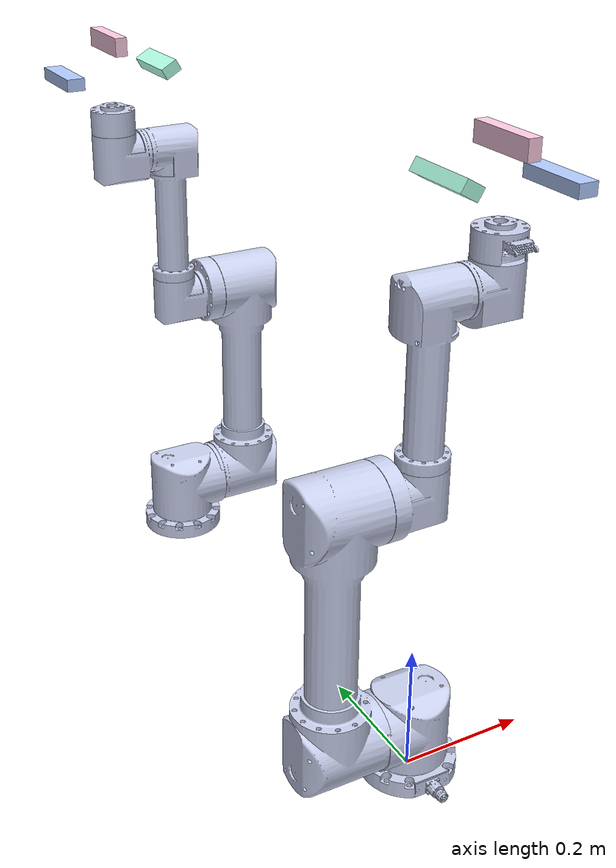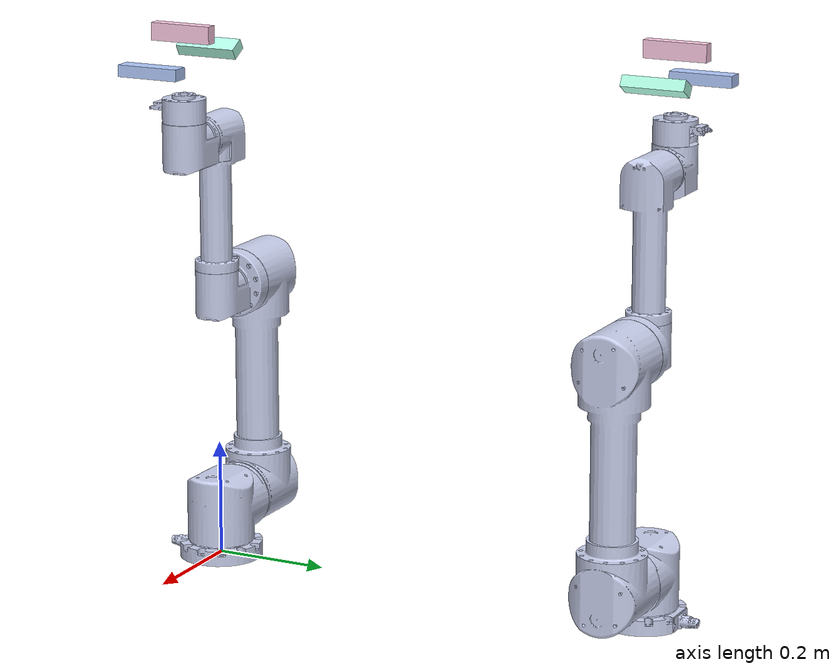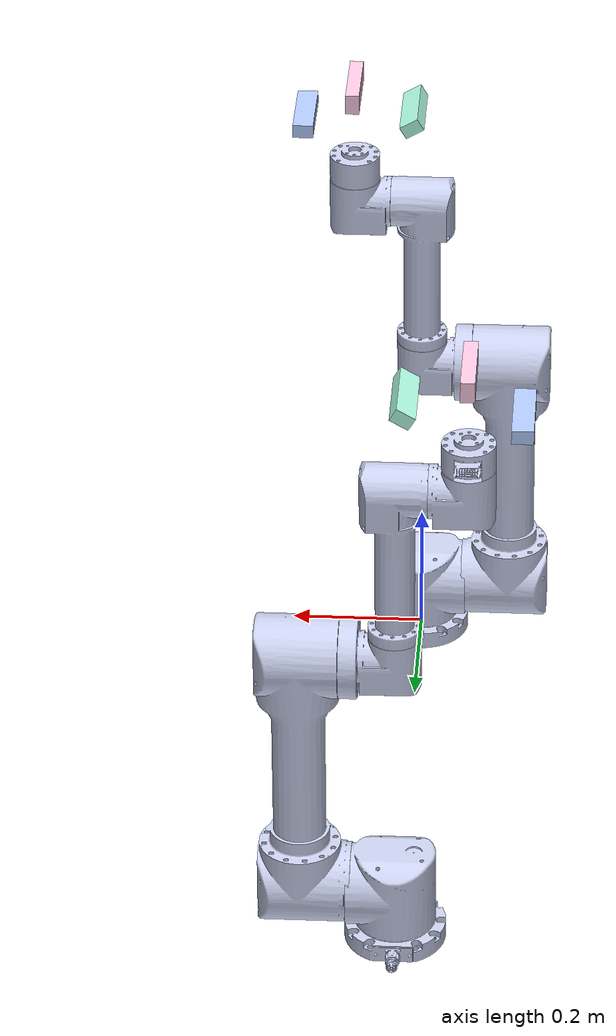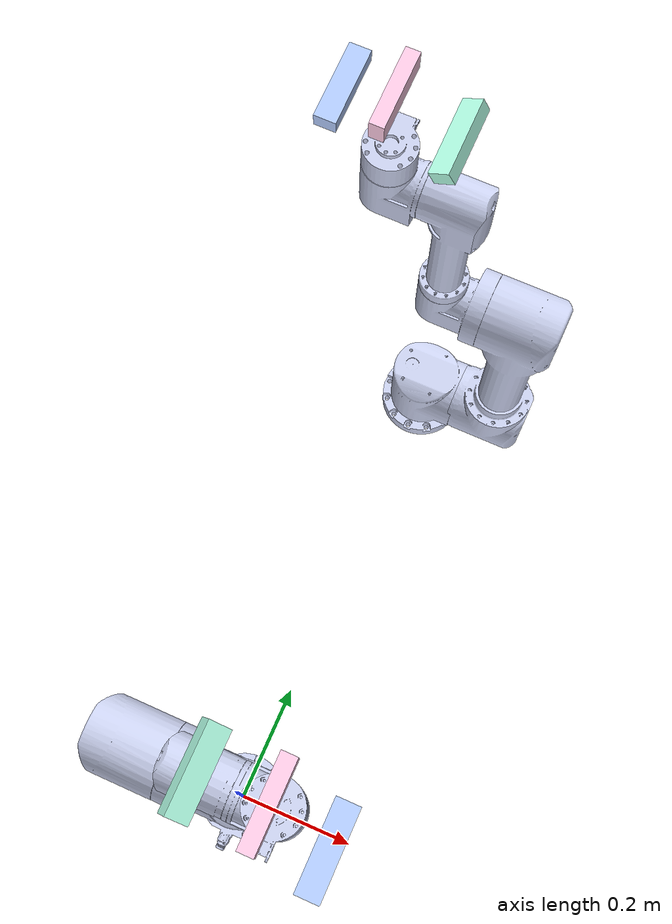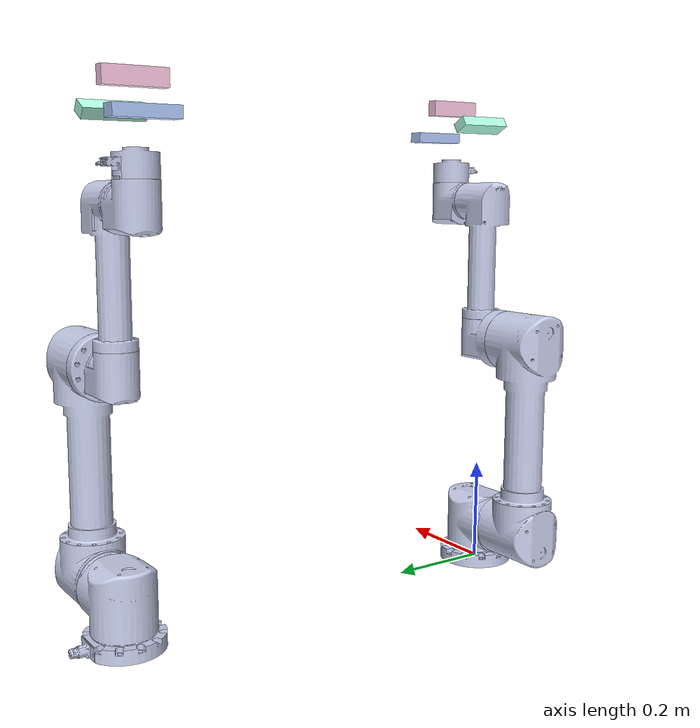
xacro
<?xml version="1.0"?>
<robot xmlns:xacro="http://ros.org/wiki/xacro" name="fsrobo_r">
  <!-- fsrobo_r -->
  <xacro:include filename="$(find fsrobo_r_description)/urdf/fsrobo_r.urdf.xacro" />

  <!-- arm -->
  <xacro:fsrobo_r_robot prefix="arm1/"/>
  <xacro:fsrobo_r_robot prefix="arm2/"/>

  <link name="world" />

  <joint name="arm1_world_joint" type="fixed">
    <parent link="world" />
    <child link = "arm1/base_link" />
    <origin xyz="0.0 0.0 0.0" rpy="0.0 0.0 0.0" />
  </joint>

  <joint name="arm2_world_joint" type="fixed">
    <parent link="world" />
    <child link = "arm2/base_link" />
    <origin xyz="-0.004 0.801 0.0" rpy="0.0 0.0 -3.14" />
  </joint>

  <link name="arm1/Tool1">
    <visual>
      <origin
        xyz="0 0 0"
        rpy="0 0 0" />
      <geometry>
        <box size="0.11 0.02 0.03" />
      </geometry>
      <material
        name="">
        <color
          rgba="1 0.8 0.9 1" />
      </material>
    </visual>
  </link>
  <link name="arm1/Tool2">
    <visual>
      <origin
        xyz="0 0 0"
        rpy="0 0 0" />
      <geometry>
        <box size="0.11 0.02 0.03" />
      </geometry>
      <material
        name="">
        <color
          rgba="0.7 1 0.9 1" />
      </material>
    </visual>
  </link>
  <link name="arm1/Camera">
    <visual>
      <origin
        xyz="0 0 0"
        rpy="0 0 0" />
      <geometry>
        <box size="0.11 0.02 0.03" />
      </geometry>
      <material
        name="">
        <color
          rgba="0.7 0.8 1 1" />
      </material>
    </visual>
  </link>
  <joint
    name="arm1/ToolJoint1"
    type="fixed">
    <origin
      xyz="0 0 0.1035"
      rpy="0 0 0" />
    <parent
      link="arm1/Link6" />
    <child
      link="arm1/Tool1" />
  </joint>
  <joint
    name="arm1/ToolJoint2"
    type="fixed">
    <origin
      xyz="0 -0.08699 0.06631"
      rpy="1.047198 0 0" />
    <parent
      link="arm1/Link6" />
    <child
      link="arm1/Tool2" />
  </joint>
  <joint
    name="arm1/CameraJoint"
    type="fixed">
    <origin
      xyz="0.01745 0.074  0.0482"
      rpy="-1.570796 0 0" />
    <parent
      link="arm1/Link6" />
    <child
      link="arm1/Camera" />
  </joint>

  <link name="arm2/Tool1">
    <visual>
      <origin
        xyz="0 0 0"
        rpy="0 0 0" />
      <geometry>
        <box size="0.11 0.02 0.03" />
      </geometry>
      <material
        name="">
        <color
          rgba="1 0.8 0.9 1" />
      </material>
    </visual>
  </link>
  <link name="arm2/Tool2">
    <visual>
      <origin
        xyz="0 0 0"
        rpy="0 0 0" />
      <geometry>
        <box size="0.11 0.02 0.03" />
      </geometry>
      <material
        name="">
        <color
          rgba="0.7 1 0.9 1" />
      </material>
    </visual>
  </link>
  <link name="arm2/Camera">
    <visual>
      <origin
        xyz="0 0 0"
        rpy="0 0 0" />
      <geometry>
        <box size="0.11 0.02 0.03" />
      </geometry>
      <material
        name="">
        <color
          rgba="0.7 0.8 1 1" />
      </material>
    </visual>
  </link>
  <joint
    name="arm2/ToolJoint1"
    type="fixed">
    <origin
      xyz="0 0 0.1045"
      rpy="0 0 0" />
    <parent
      link="arm2/Link6" />
    <child
      link="arm2/Tool1" />
  </joint>
  <joint
    name="arm2/ToolJoint2"
    type="fixed">
    <origin
      xyz="0 -0.08647 0.0601"
      rpy="1.047198 0 0" />
    <parent
      link="arm2/Link6" />
    <child
      link="arm2/Tool2" />
  </joint>
  <joint
    name="arm2/CameraJoint"
    type="fixed">
    <origin
      xyz="0.01769 0.07403 0.0482"
      rpy="-1.570796 0 0" />
    <parent
      link="arm2/Link6" />
    <child
      link="arm2/Camera" />
  </joint>
</robot>

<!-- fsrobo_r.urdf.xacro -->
<robot xmlns:xacro="http://ros.org/wiki/xacro">

  <xacro:macro name="fsrobo_r_robot" params="prefix">
    <link
      name="${prefix}base_link">
      <inertial>
        <origin
          xyz="6.20129635789006E-06 0.00135671010372665 0.00692741827175326"
          rpy="0 0 0" />
        <mass
          value="0.224918104064038" />
        <inertia
          ixx="0.000389773121010351"
          ixy="5.34979023842647E-08"
          ixz="2.00299715681034E-09"
          iyy="0.000393784206533644"
          iyz="1.8618345474573E-06"
          izz="0.000763322543979528" />
      </inertial>
      <visual>
        <origin
          xyz="0 0 0"
          rpy="0 0 0" />
        <geometry>
          <mesh
            filename="package://fsrobo_r_description/meshes/base_link.STL" />
        </geometry>
        <material
          name="">
          <color
            rgba="0.792156862745098 0.819607843137255 0.933333333333333 1" />
        </material>
      </visual>
      <collision>
        <origin
          xyz="0 0 0"
          rpy="0 0 0" />
        <geometry>
          <mesh
            filename="package://fsrobo_r_description/meshes/base_link.STL" />
        </geometry>
      </collision>
    </link>
    <link
      name="${prefix}Link1">
      <inertial>
        <origin
          xyz="-0.00449037408423813 5.42440907528791E-06 0.0715874027691071"
          rpy="0 0 0" />
        <mass
          value="1.1964979585014" />
        <inertia
          ixx="0.00235325407469509"
          ixy="-1.48424194830244E-07"
          ixz="0.00016645431594179"
          iyy="0.00238080305757056"
          iyz="-3.71645517568927E-07"
          izz="0.00214862307498412" />
      </inertial>
      <visual>
        <origin
          xyz="0 0 0"
          rpy="0 0 0" />
        <geometry>
          <mesh
            filename="package://fsrobo_r_description/meshes/Link1.STL" />
        </geometry>
        <material
          name="">
          <color
            rgba="0.792156862745098 0.819607843137255 0.933333333333333 1" />
        </material>
      </visual>
      <collision>
        <origin
          xyz="0 0 0"
          rpy="0 0 0" />
        <geometry>
          <mesh
            filename="package://fsrobo_r_description/meshes/Link1.STL" />
        </geometry>
      </collision>
    </link>
    <joint
      name="${prefix}Joint1"
      type="revolute">
      <origin
        xyz="0 0 0"
        rpy="0 0 0" />
      <parent
        link="${prefix}base_link" />
      <child
        link="${prefix}Link1" />
      <axis
        xyz="0 0 1" />
      <limit
        lower="-4.1888"
        upper="4.1888"
        effort="0"
        velocity="3.11049" />
    </joint>
    <link
      name="${prefix}Link2">
      <inertial>
        <origin
          xyz="-0.126463562505262 -3.03757464646919E-14 0.189799410965193"
          rpy="0 0 0" />
        <mass
          value="3.71491032829736" />
        <inertia
          ixx="0.0996449226656911"
          ixy="-4.07081213433656E-15"
          ixz="0.000531355089159735"
          iyy="0.100320218055197"
          iyz="-2.73732399977317E-06"
          izz="0.00607078426291308" />
      </inertial>
      <visual>
        <origin
          xyz="0 0 0"
          rpy="0 0 0" />
        <geometry>
          <mesh
            filename="package://fsrobo_r_description/meshes/Link2.STL" />
        </geometry>
        <material
          name="">
          <color
            rgba="0.792156862745098 0.819607843137255 0.933333333333333 1" />
        </material>
      </visual>
      <collision>
        <origin
          xyz="0 0 0"
          rpy="0 0 0" />
        <geometry>
          <mesh
            filename="package://fsrobo_r_description/meshes/Link2.STL" />
        </geometry>
      </collision>
    </link>
    <joint
      name="${prefix}Joint2"
      type="revolute">
      <origin
        xyz="0 0 0.0875"
        rpy="0 0 0" />
      <parent
        link="${prefix}Link1" />
      <child
        link="${prefix}Link2" />
      <axis
        xyz="1 0 0" />
      <limit
        lower="-4.1888"
        upper="4.1888"
        effort="0"
        velocity="3.11049" />
    </joint>
    <link
      name="${prefix}Link3">
      <inertial>
        <origin
          xyz="-0.0181715886077434 -8.39942636869206E-06 0.00361736607529833"
          rpy="0 0 0" />
        <mass
          value="0.503493344111679" />
        <inertia
          ixx="0.000606835380422718"
          ixy="2.96258447607099E-07"
          ixz="-6.8421095589689E-05"
          iyy="0.000746558385545657"
          iyz="-2.34699770879584E-08"
          izz="0.000681452998524084" />
      </inertial>
      <visual>
        <origin
          xyz="0 0 0"
          rpy="0 0 0" />
        <geometry>
          <mesh
            filename="package://fsrobo_r_description/meshes/Link3.STL" />
        </geometry>
        <material
          name="">
          <color
            rgba="0.792156862745098 0.819607843137255 0.933333333333333 1" />
        </material>
      </visual>
      <collision>
        <origin
          xyz="0 0 0"
          rpy="0 0 0" />
        <geometry>
          <mesh
            filename="package://fsrobo_r_description/meshes/Link3.STL" />
        </geometry>
      </collision>
    </link>
    <joint
      name="${prefix}Joint3"
      type="revolute">
      <origin
        xyz="0 0 0.385"
        rpy="0 0 0" />
      <parent
        link="${prefix}Link2" />
      <child
        link="${prefix}Link3" />
      <axis
        xyz="1 0 0" />
      <limit
        lower="-4.1888"
        upper="4.1888"
        effort="0"
        velocity="3.11049" />
    </joint>
    <link
      name="${prefix}Link4">
      <inertial>
        <origin
          xyz="0.00290243681192058 4.92118154597773E-06 -0.0738374738187304"
          rpy="0 0 0" />
        <mass
          value="0.835817436377135" />
        <inertia
          ixx="0.0051838603413169"
          ixy="4.30855334856876E-08"
          ixz="-0.000214303665531665"
          iyy="0.00526559628549006"
          iyz="-4.86165136068341E-07"
          izz="0.000590028561985229" />
      </inertial>
      <visual>
        <origin
          xyz="0 0 0"
          rpy="0 0 0" />
        <geometry>
          <mesh
            filename="package://fsrobo_r_description/meshes/Link4.STL" />
        </geometry>
        <material
          name="">
          <color
            rgba="0.792156862745098 0.819607843137255 0.933333333333333 1" />
        </material>
      </visual>
      <collision>
        <origin
          xyz="0 0 0"
          rpy="0 0 0" />
        <geometry>
          <mesh
            filename="package://fsrobo_r_description/meshes/Link4.STL" />
        </geometry>
      </collision>
    </link>
    <joint
      name="${prefix}Joint4"
      type="revolute">
      <origin
        xyz="0 0 0.275"
        rpy="0 0 0" />
      <parent
        link="${prefix}Link3" />
      <child
        link="${prefix}Link4" />
      <axis
        xyz="0 0 1" />
      <limit
        lower="-4.1888"
        upper="4.1888"
        effort="0"
        velocity="3.11049" />
    </joint>
    <link
      name="${prefix}Link5">
      <inertial>
        <origin
          xyz="-0.00762763949469519 -1.06459091140225E-05 0.00458167547641364"
          rpy="0 0 0" />
        <mass
          value="0.397519557815901" />
        <inertia
          ixx="0.00038454224185"
          ixy="2.51938979759281E-07"
          ixz="-4.92173834393031E-05"
          iyy="0.000421678593966681"
          iyz="-2.77663008675825E-08"
          izz="0.000358331267792745" />
      </inertial>
      <visual>
        <origin
          xyz="0 0 0"
          rpy="0 0 0" />
        <geometry>
          <mesh
            filename="package://fsrobo_r_description/meshes/Link5.STL" />
        </geometry>
        <material
          name="">
          <color
            rgba="0.792156862745098 0.819607843137255 0.933333333333333 1" />
        </material>
      </visual>
      <collision>
        <origin
          xyz="0 0 0"
          rpy="0 0 0" />
        <geometry>
          <mesh
            filename="package://fsrobo_r_description/meshes/Link5.STL" />
        </geometry>
      </collision>
    </link>
    <joint
      name="${prefix}Joint5"
      type="revolute">
      <origin
        xyz="0.100 0 0"
        rpy="0 0 0" />
      <parent
        link="${prefix}Link4" />
      <child
        link="${prefix}Link5" />
      <axis
        xyz="1 0 0" />
      <limit
        lower="-4.1888"
        upper="4.1888"
        effort="0"
        velocity="3.11049" />
    </joint>
    <link
      name="${prefix}Link6">
      <inertial>
        <origin
          xyz="0.001824741161344 -1.2714577393637E-05 -0.0183104466551915"
          rpy="0 0 0" />
        <mass
          value="0.0659925254230773" />
        <inertia
          ixx="3.46638767440248E-05"
          ixy="-3.0599679783686E-08"
          ixz="-5.91110846528508E-07"
          iyy="4.40852639111946E-05"
          iyz="4.19435440614541E-09"
          izz="6.53486052794694E-05" />
      </inertial>
      <visual>
        <origin
          xyz="0 0 0"
          rpy="0 0 0" />
        <geometry>
          <mesh
            filename="package://fsrobo_r_description/meshes/Link6.STL" />
        </geometry>
        <material
          name="">
          <color
            rgba="0.792156862745098 0.819607843137255 0.933333333333333 1" />
        </material>
      </visual>
      <collision>
        <origin
          xyz="0 0 0"
          rpy="0 0 0" />
        <geometry>
          <mesh
            filename="package://fsrobo_r_description/meshes/Link6.STL" />
        </geometry>
      </collision>
    </link>
    <joint
      name="${prefix}Joint6"
      type="revolute">
      <origin
        xyz="0 0 0.085"
        rpy="0 0 -1.5707" />
      <parent
        link="${prefix}Link5" />
      <child
        link="${prefix}Link6" />
      <axis
        xyz="0 0 1" />
      <limit
        lower="-6.2832"
        upper="6.2832"
        effort="0"
        velocity="3.11049" />
    </joint>
  </xacro:macro>
</robot>
